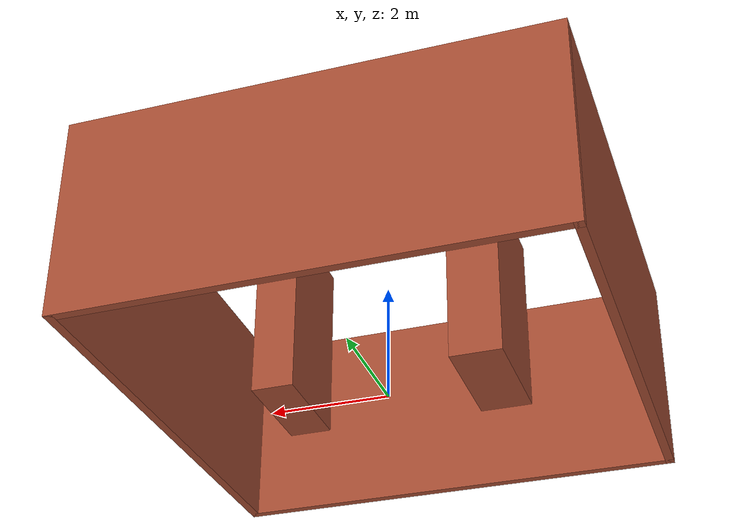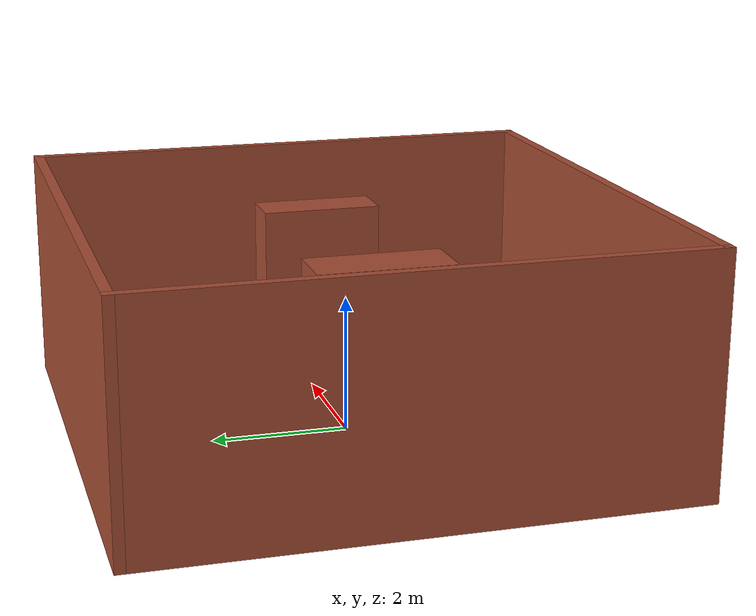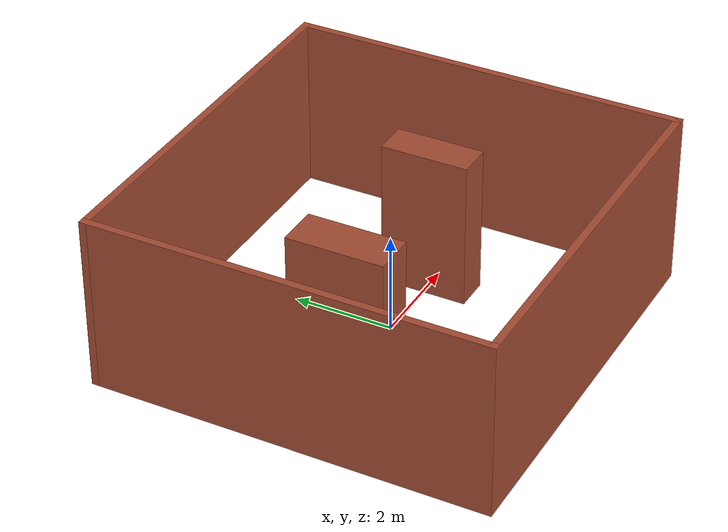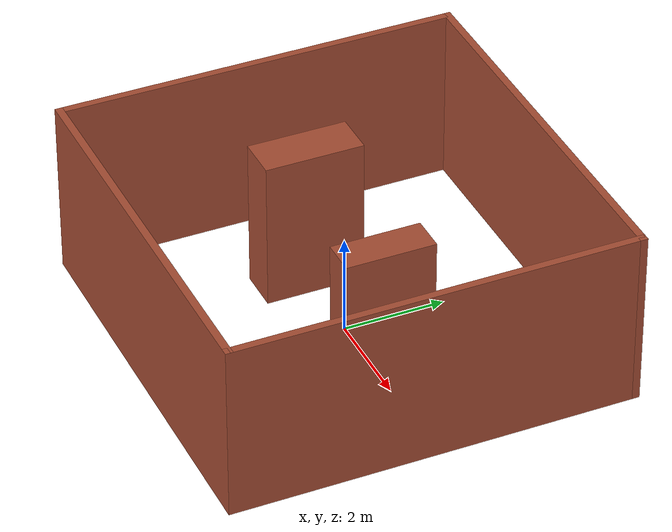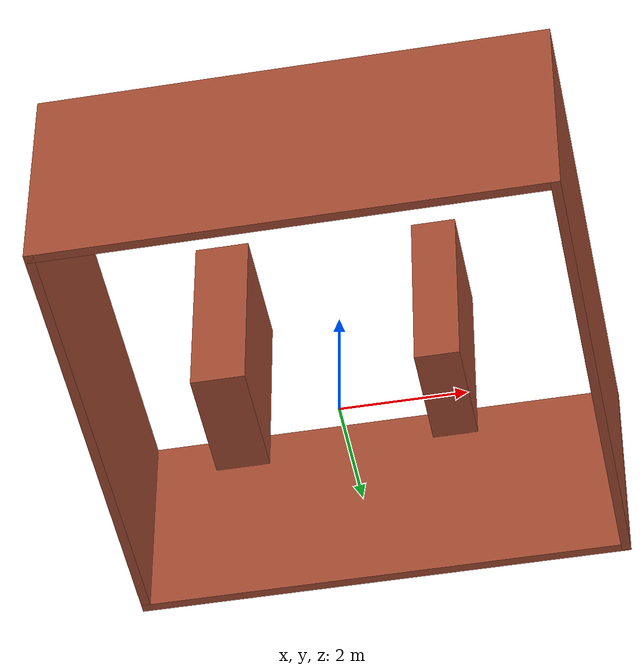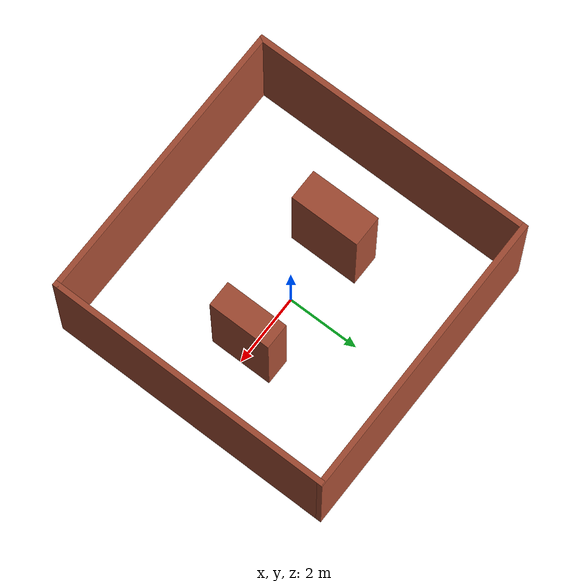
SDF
<?xml version='1.0'?>
<sdf version='1.5'>
  <model name='house_4'>
    <link name='Wall_11'>
      <pose frame=''>1.66321 0 0 0 0 -1.5708</pose>
      <self_collide>0</self_collide>
      <kinematic>0</kinematic>
      <gravity>1</gravity>
      <inertial>
        <mass>1</mass>
        <pose frame=''>0 0 0 0 -0 0</pose>
        <inertia>
          <ixx>1</ixx>
          <ixy>0</ixy>
          <ixz>0</ixz>
          <iyy>1</iyy>
          <iyz>0</iyz>
          <izz>1</izz>
        </inertia>
      </inertial>
      <visual name='Wall_11_Visual'>
        <pose frame=''>0 0 1.5 0 -0 0</pose>
        <geometry>
          <box>
            <size>1.75 0.7 3</size>
          </box>
        </geometry>
        <material>
          <script>
            <uri>file://media/materials/scripts/gazebo.material</uri>
            <name>Gazebo/Bricks</name>
          </script>
          <ambient>1 1 1 1</ambient>
          <diffuse>1 1 1 1</diffuse>
          <specular>0.2 0.2 0.2 1</specular>
          <emissive>0 0 0 1</emissive>
          <shader type='pixel'>
            <normal_map>__default__</normal_map>
          </shader>
        </material>
        <cast_shadows>1</cast_shadows>
        <transparency>0</transparency>
      </visual>
      <collision name='Wall_11_Collision'>
        <laser_retro>0</laser_retro>
        <max_contacts>10</max_contacts>
        <pose frame=''>0 0 1.5 0 -0 0</pose>
        <geometry>
          <box>
            <size>1.75 0.7 3</size>
          </box>
        </geometry>
        <surface>
          <friction>
            <ode>
              <mu>1</mu>
              <mu2>1</mu2>
              <fdir1>0 0 0</fdir1>
              <slip1>0</slip1>
              <slip2>0</slip2>
            </ode>
          </friction>
          <bounce>
            <restitution_coefficient>0</restitution_coefficient>
            <threshold>1e+06</threshold>
          </bounce>
          <contact>
            <collide_without_contact>0</collide_without_contact>
            <collide_without_contact_bitmask>1</collide_without_contact_bitmask>
            <collide_bitmask>1</collide_bitmask>
            <ode>
              <soft_cfm>0</soft_cfm>
              <soft_erp>0.2</soft_erp>
              <kp>1e+13</kp>
              <kd>1</kd>
              <max_vel>0.01</max_vel>
              <min_depth>0</min_depth>
            </ode>
            <bullet>
              <split_impulse>1</split_impulse>
              <split_impulse_penetration_threshold>-0.01</split_impulse_penetration_threshold>
              <soft_cfm>0</soft_cfm>
              <soft_erp>0.2</soft_erp>
              <kp>1e+13</kp>
              <kd>1</kd>
            </bullet>
          </contact>
        </surface>
      </collision>
    </link>
    <link name='Wall_13'>
      <pose frame=''>-1.711 0 0 0 0 -1.5708</pose>
      <inertial>
        <mass>1</mass>
        <pose frame=''>0 0 0 0 -0 0</pose>
        <inertia>
          <ixx>1</ixx>
          <ixy>0</ixy>
          <ixz>0</ixz>
          <iyy>1</iyy>
          <iyz>0</iyz>
          <izz>1</izz>
        </inertia>
      </inertial>
      <self_collide>0</self_collide>
      <kinematic>0</kinematic>
      <gravity>1</gravity>
      <visual name='Wall_13_Visual'>
        <pose frame=''>0 0 1.5 0 -0 0</pose>
        <geometry>
          <box>
            <size>1.95023 0.85 3</size>
          </box>
        </geometry>
        <material>
          <script>
            <uri>file://media/materials/scripts/gazebo.material</uri>
            <name>Gazebo/Bricks</name>
          </script>
          <ambient>1 1 1 1</ambient>
          <diffuse>1 1 1 1</diffuse>
          <specular>0.2 0.2 0.2 1</specular>
          <emissive>0 0 0 1</emissive>
          <shader type='vertex'>
            <normal_map>__default__</normal_map>
          </shader>
        </material>
        <cast_shadows>1</cast_shadows>
        <transparency>0</transparency>
      </visual>
      <collision name='Wall_13_Collision'>
        <laser_retro>0</laser_retro>
        <max_contacts>10</max_contacts>
        <pose frame=''>0 0 1.5 0 -0 0</pose>
        <geometry>
          <box>
            <size>1.95023 0.8 3</size>
          </box>
        </geometry>
        <surface>
          <friction>
            <ode>
              <mu>1</mu>
              <mu2>1</mu2>
              <fdir1>0 0 0</fdir1>
              <slip1>0</slip1>
              <slip2>0</slip2>
            </ode>
          </friction>
          <bounce>
            <restitution_coefficient>0</restitution_coefficient>
            <threshold>1e+06</threshold>
          </bounce>
          <contact>
            <collide_without_contact>0</collide_without_contact>
            <collide_without_contact_bitmask>1</collide_without_contact_bitmask>
            <collide_bitmask>1</collide_bitmask>
            <ode>
              <soft_cfm>0</soft_cfm>
              <soft_erp>0.2</soft_erp>
              <kp>1e+13</kp>
              <kd>1</kd>
              <max_vel>0.01</max_vel>
              <min_depth>0</min_depth>
            </ode>
            <bullet>
              <split_impulse>1</split_impulse>
              <split_impulse_penetration_threshold>-0.01</split_impulse_penetration_threshold>
              <soft_cfm>0</soft_cfm>
              <soft_erp>0.2</soft_erp>
              <kp>1e+13</kp>
              <kd>1</kd>
            </bullet>
          </contact>
        </surface>
      </collision>
    </link>
    <link name='Wall_2'>
      <pose frame=''>-3.925 0 0 0 0 -1.5708</pose>
      <self_collide>0</self_collide>
      <kinematic>0</kinematic>
      <visual name='Wall_2_Visual'>
        <pose frame=''>0 0 1.75 0 -0 0</pose>
        <geometry>
          <box>
            <size>7.97687 0.15 3.5</size>
          </box>
        </geometry>
        <material>
          <script>
            <uri>file://media/materials/scripts/gazebo.material</uri>
            <name>Gazebo/Bricks</name>
          </script>
          <ambient>1 1 1 1</ambient>
          <diffuse>1 1 1 1</diffuse>
          <specular>0.2 0.2 0.2 1</specular>
          <emissive>0 0 0 1</emissive>
          <shader type='pixel'/>
        </material>
        <cast_shadows>1</cast_shadows>
        <transparency>0</transparency>
      </visual>
      <collision name='Wall_2_Collision'>
        <laser_retro>0</laser_retro>
        <max_contacts>10</max_contacts>
        <pose frame=''>0 0 1.75 0 -0 0</pose>
        <geometry>
          <box>
            <size>7.97687 0.15 3.5</size>
          </box>
        </geometry>
        <surface>
          <friction>
            <ode>
              <mu>1</mu>
              <mu2>1</mu2>
              <fdir1>0 0 0</fdir1>
              <slip1>0</slip1>
              <slip2>0</slip2>
            </ode>
          </friction>
          <bounce>
            <restitution_coefficient>0</restitution_coefficient>
            <threshold>1e+06</threshold>
          </bounce>
          <contact>
            <collide_without_contact>0</collide_without_contact>
            <collide_without_contact_bitmask>1</collide_without_contact_bitmask>
            <collide_bitmask>1</collide_bitmask>
            <ode>
              <soft_cfm>0</soft_cfm>
              <soft_erp>0.2</soft_erp>
              <kp>1e+13</kp>
              <kd>1</kd>
              <max_vel>0.01</max_vel>
              <min_depth>0</min_depth>
            </ode>
            <bullet>
              <split_impulse>1</split_impulse>
              <split_impulse_penetration_threshold>-0.01</split_impulse_penetration_threshold>
              <soft_cfm>0</soft_cfm>
              <soft_erp>0.2</soft_erp>
              <kp>1e+13</kp>
              <kd>1</kd>
            </bullet>
          </contact>
        </surface>
      </collision>
    </link>
    <link name='Wall_3'>
      <pose frame=''>0 -3.91344 0 0 -0 0</pose>
      <self_collide>0</self_collide>
      <kinematic>0</kinematic>
      <visual name='Wall_3_Visual'>
        <pose frame=''>0 0 1.75 0 -0 0</pose>
        <geometry>
          <box>
            <size>8 0.15 3.5</size>
          </box>
        </geometry>
        <material>
          <script>
            <uri>file://media/materials/scripts/gazebo.material</uri>
            <name>Gazebo/Bricks</name>
          </script>
          <ambient>1 1 1 1</ambient>
          <diffuse>1 1 1 1</diffuse>
          <specular>0.2 0.2 0.2 1</specular>
          <emissive>0 0 0 1</emissive>
          <shader type='pixel'/>
        </material>
        <cast_shadows>1</cast_shadows>
        <transparency>0</transparency>
      </visual>
      <collision name='Wall_3_Collision'>
        <laser_retro>0</laser_retro>
        <max_contacts>10</max_contacts>
        <pose frame=''>0 0 1.75 0 -0 0</pose>
        <geometry>
          <box>
            <size>8 0.15 3.5</size>
          </box>
        </geometry>
        <surface>
          <friction>
            <ode>
              <mu>1</mu>
              <mu2>1</mu2>
              <fdir1>0 0 0</fdir1>
              <slip1>0</slip1>
              <slip2>0</slip2>
            </ode>
          </friction>
          <bounce>
            <restitution_coefficient>0</restitution_coefficient>
            <threshold>1e+06</threshold>
          </bounce>
          <contact>
            <collide_without_contact>0</collide_without_contact>
            <collide_without_contact_bitmask>1</collide_without_contact_bitmask>
            <collide_bitmask>1</collide_bitmask>
            <ode>
              <soft_cfm>0</soft_cfm>
              <soft_erp>0.2</soft_erp>
              <kp>1e+13</kp>
              <kd>1</kd>
              <max_vel>0.01</max_vel>
              <min_depth>0</min_depth>
            </ode>
            <bullet>
              <split_impulse>1</split_impulse>
              <split_impulse_penetration_threshold>-0.01</split_impulse_penetration_threshold>
              <soft_cfm>0</soft_cfm>
              <soft_erp>0.2</soft_erp>
              <kp>1e+13</kp>
              <kd>1</kd>
            </bullet>
          </contact>
        </surface>
      </collision>
    </link>
    <link name='Wall_4'>
      <pose frame=''>3.925 -0.011565 0 0 -0 1.5708</pose>
      <self_collide>0</self_collide>
      <kinematic>0</kinematic>
      <visual name='Wall_4_Visual'>
        <pose frame=''>0 0 1.75 0 -0 0</pose>
        <geometry>
          <box>
            <size>7.95374 0.15 3.5</size>
          </box>
        </geometry>
        <material>
          <script>
            <uri>file://media/materials/scripts/gazebo.material</uri>
            <name>Gazebo/Bricks</name>
          </script>
          <ambient>1 1 1 1</ambient>
          <diffuse>1 1 1 1</diffuse>
          <specular>0.2 0.2 0.2 1</specular>
          <emissive>0 0 0 1</emissive>
          <shader type='pixel'/>
        </material>
        <cast_shadows>1</cast_shadows>
        <transparency>0</transparency>
      </visual>
      <collision name='Wall_4_Collision'>
        <laser_retro>0</laser_retro>
        <max_contacts>10</max_contacts>
        <pose frame=''>0 0 1.75 0 -0 0</pose>
        <geometry>
          <box>
            <size>7.95374 0.15 3.5</size>
          </box>
        </geometry>
        <surface>
          <friction>
            <ode>
              <mu>1</mu>
              <mu2>1</mu2>
              <fdir1>0 0 0</fdir1>
              <slip1>0</slip1>
              <slip2>0</slip2>
            </ode>
          </friction>
          <bounce>
            <restitution_coefficient>0</restitution_coefficient>
            <threshold>1e+06</threshold>
          </bounce>
          <contact>
            <collide_without_contact>0</collide_without_contact>
            <collide_without_contact_bitmask>1</collide_without_contact_bitmask>
            <collide_bitmask>1</collide_bitmask>
            <ode>
              <soft_cfm>0</soft_cfm>
              <soft_erp>0.2</soft_erp>
              <kp>1e+13</kp>
              <kd>1</kd>
              <max_vel>0.01</max_vel>
              <min_depth>0</min_depth>
            </ode>
            <bullet>
              <split_impulse>1</split_impulse>
              <split_impulse_penetration_threshold>-0.01</split_impulse_penetration_threshold>
              <soft_cfm>0</soft_cfm>
              <soft_erp>0.2</soft_erp>
              <kp>1e+13</kp>
              <kd>1</kd>
            </bullet>
          </contact>
        </surface>
      </collision>
    </link>
    <link name='Wall_5'>
      <pose frame=''>0 3.91344 0 0 -0 3.14159</pose>
      <self_collide>0</self_collide>
      <kinematic>0</kinematic>
      <visual name='Wall_5_Visual'>
        <pose frame=''>0 0 1.75 0 -0 0</pose>
        <geometry>
          <box>
            <size>8 0.15 3.5</size>
          </box>
        </geometry>
        <material>
          <script>
            <uri>file://media/materials/scripts/gazebo.material</uri>
            <name>Gazebo/Bricks</name>
          </script>
          <ambient>1 1 1 1</ambient>
          <diffuse>1 1 1 1</diffuse>
          <specular>0.2 0.2 0.2 1</specular>
          <emissive>0 0 0 1</emissive>
          <shader type='pixel'/>
        </material>
        <cast_shadows>1</cast_shadows>
        <transparency>0</transparency>
      </visual>
      <collision name='Wall_5_Collision'>
        <laser_retro>0</laser_retro>
        <max_contacts>10</max_contacts>
        <pose frame=''>0 0 1.75 0 -0 0</pose>
        <geometry>
          <box>
            <size>8 0.15 3.5</size>
          </box>
        </geometry>
        <surface>
          <friction>
            <ode>
              <mu>1</mu>
              <mu2>1</mu2>
              <fdir1>0 0 0</fdir1>
              <slip1>0</slip1>
              <slip2>0</slip2>
            </ode>
          </friction>
          <bounce>
            <restitution_coefficient>0</restitution_coefficient>
            <threshold>1e+06</threshold>
          </bounce>
          <contact>
            <collide_without_contact>0</collide_without_contact>
            <collide_without_contact_bitmask>1</collide_without_contact_bitmask>
            <collide_bitmask>1</collide_bitmask>
            <ode>
              <soft_cfm>0</soft_cfm>
              <soft_erp>0.2</soft_erp>
              <kp>1e+13</kp>
              <kd>1</kd>
              <max_vel>0.01</max_vel>
              <min_depth>0</min_depth>
            </ode>
            <bullet>
              <split_impulse>1</split_impulse>
              <split_impulse_penetration_threshold>-0.01</split_impulse_penetration_threshold>
              <soft_cfm>0</soft_cfm>
              <soft_erp>0.2</soft_erp>
              <kp>1e+13</kp>
              <kd>1</kd>
            </bullet>
          </contact>
        </surface>
      </collision>
    </link>
    <static>1</static>
    <allow_auto_disable>1</allow_auto_disable>
  </model>
</sdf>
